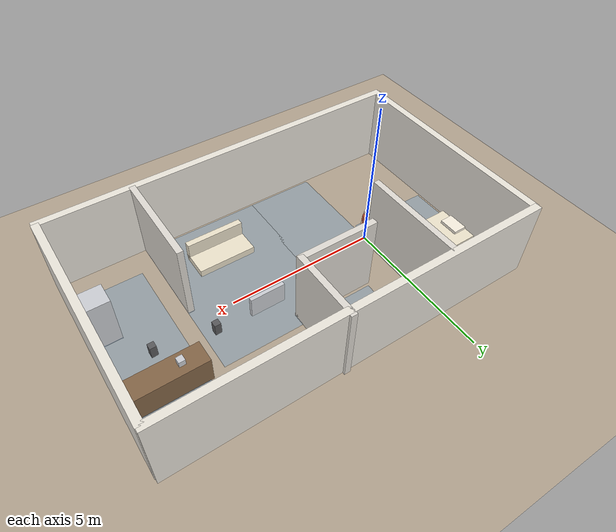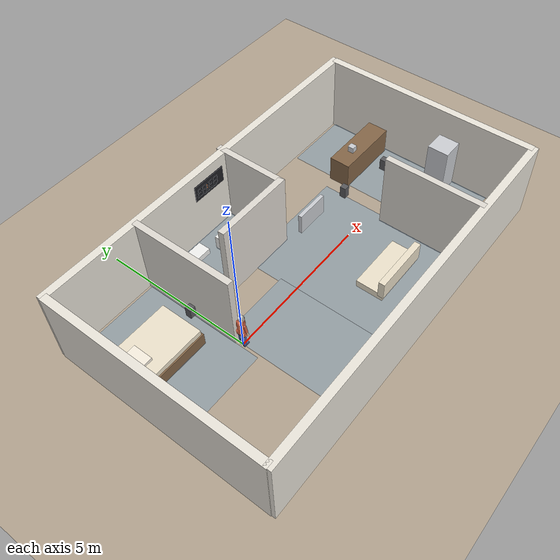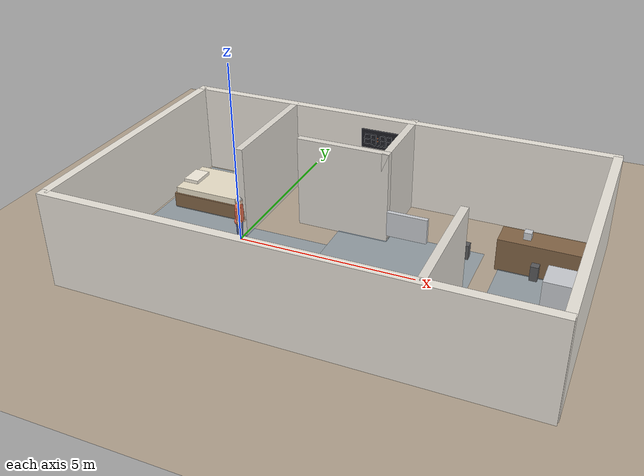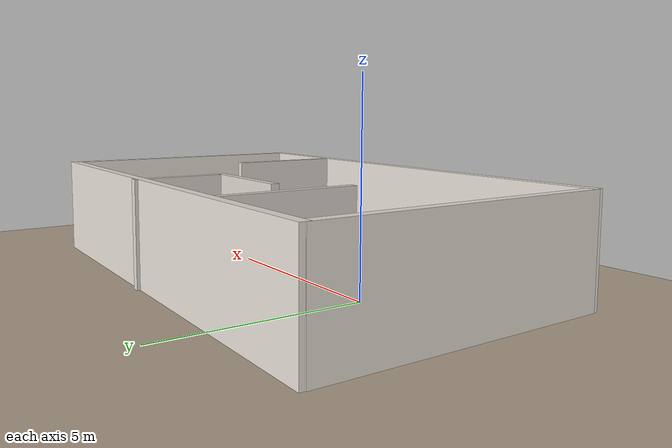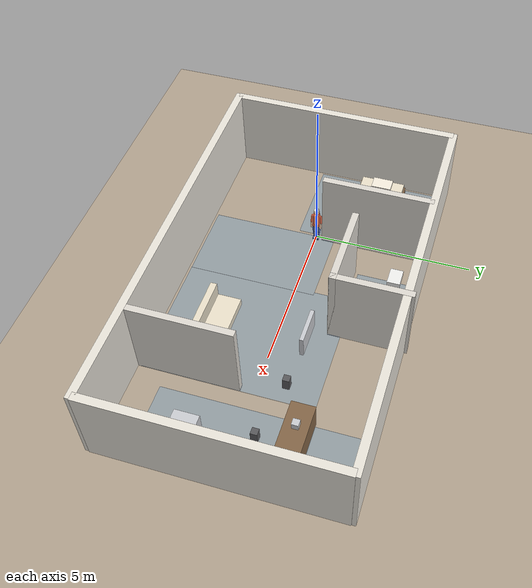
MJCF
<mujoco model="watch">
  <compiler angle="radian" autolimits="true"/>
  <option timestep="0.004" integrator="implicitfast" gravity="0 0 -9.81"/>

  <visual>
    <headlight ambient="0.48 0.47 0.46" diffuse="0.40 0.40 0.39" specular="0.05 0.05 0.05"/>
    <map znear="0.02" zfar="60"/>
    <quality shadowsize="4096"/>
    <global offwidth="1600" offheight="1200"/>
  </visual>

  <asset>
    <texture name="sky" type="skybox" builtin="gradient"
             rgb1="0.55 0.62 0.72" rgb2="0.86 0.88 0.90" width="256" height="256"/>
    <texture name="floor_tex" type="2d" builtin="checker" rgb1="0.72 0.66 0.58"
             rgb2="0.68 0.62 0.54" width="256" height="256"/>
    <material name="floor" texture="floor_tex" texrepeat="10 8" specular="0.05"/>
    <material name="wall" rgba="0.92 0.90 0.86 1" specular="0.04"/>
    <material name="inner_wall" rgba="0.88 0.86 0.83 1" specular="0.04"/>

    <!-- Furniture, muted so the person and the sensors are what the eye goes to. -->
    <material name="bed_mat" rgba="0.93 0.89 0.80 1" specular="0.05"/>
    <material name="wood" rgba="0.52 0.40 0.28 1" specular="0.12"/>
    <material name="appliance" rgba="0.80 0.81 0.83 1" specular="0.45" shininess="0.5"/>
    <material name="porcelain" rgba="0.95 0.95 0.94 1" specular="0.5" shininess="0.6"/>
    <!-- A little warmer than the mattress, so the head end of the bed is legible. -->
    <material name="pillow_mat" rgba="0.97 0.94 0.88 1" specular="0.2"/>

    <!-- The person. One warm colour so they are unmistakable in a grey flat. -->
    <material name="person_body" rgba="0.88 0.42 0.30 1" specular="0.15"/>
    <material name="person_head" rgba="0.90 0.76 0.65 1" specular="0.15"/>
    <material name="person_hair" rgba="0.88 0.88 0.86 1" specular="0.10"/>
    <material name="person_skin" rgba="0.90 0.76 0.65 1" specular="0.15"/>
    <material name="person_legs" rgba="0.31 0.38 0.60 1" specular="0.10"/>

    <material name="pir_idle" rgba="0.35 0.62 0.88 0.30"/>
    <material name="pir_fired" rgba="1.00 0.70 0.10 0.85" emission="0.6"/>
    <material name="lamp_off" rgba="0.35 0.35 0.36 1" specular="0.2"/>

    <material name="clock_case" rgba="0.12 0.12 0.14 1" specular="0.3"/>
    <material name="seg_off" rgba="0.26 0.27 0.30 1"/>
    <material name="seg_on" rgba="1.00 0.45 0.12 1" emission="0.25"/>
    <material name="speed_off" rgba="0.22 0.24 0.26 1"/>
    <material name="speed_on" rgba="0.34 0.88 0.48 1" emission="0.5"/>
    <material name="lamp_on" rgba="1.0 0.93 0.62 1" emission="0.95" specular="0.4"/>
  </asset>

  <worldbody>
    <light name="ceiling" pos="3 1.5 3.4" dir="0 0 -1" directional="true"
           diffuse="0.68 0.67 0.64" specular="0.08 0.08 0.08" castshadow="true"/>
    <light name="fill" pos="-2 -4 3" dir="0.4 0.6 -0.7" directional="true"
           diffuse="0.20 0.20 0.22"/>

    <geom name="floor" type="plane" size="20 20 0.05" material="floor"
          friction="1.0 0.02 0.001" condim="3"/>

    <!-- ===== outer walls ===== -->
    <geom name="wall_n" type="box" pos="3.0 3.6 1.3" size="6.2 0.12 1.3" material="wall"/>
    <geom name="wall_s" type="box" pos="3.0 -3.6 1.3" size="6.2 0.12 1.3" material="wall"/>
    <geom name="wall_w" type="box" pos="-3.1 0 1.3" size="0.12 3.6 1.3" material="wall"/>
    <geom name="wall_e" type="box" pos="9.1 0 1.3" size="0.12 3.6 1.3" material="wall"/>

    <!-- ===== inner walls, leaving doorways ===== -->
    <!-- bedroom / hallway divider, doorway at the south end -->
    <geom name="div_bed" type="box" pos="0.0 1.9 1.3" size="0.10 1.7 1.3" material="inner_wall"/>
    <!-- bathroom, a small room off the hallway -->
    <geom name="bath_n" type="box" pos="2.4 1.5 1.3" size="1.3 0.10 1.3" material="inner_wall"/>
    <geom name="bath_e" type="box" pos="3.6 2.6 1.3" size="0.10 1.2 1.3" material="inner_wall"/>
    <!-- living / kitchen divider, doorway at the north end -->
    <geom name="div_kitchen" type="box" pos="6.2 -2.0 1.3" size="0.10 1.6 1.3" material="inner_wall"/>

    <!-- ===== bedroom (west) ===== -->
    <body name="bed" pos="-1.6 1.6 0">
      <geom name="bed_frame" type="box" pos="0 0 0.22" size="1.0 0.75 0.22" material="wood"/>
      <geom name="bed_mattress" type="box" pos="0 0 0.52" size="0.95 0.70 0.10" material="bed_mat"/>
      <geom name="bed_pillow" type="box" pos="-0.70 0 0.66" size="0.22 0.32 0.06" material="pillow_mat"/>
    </body>
    <geom name="bedside_lamp" type="box" pos="-0.3 1.6 0.55" size="0.10 0.10 0.18"
          material="lamp_off"/>

    <!-- ===== bathroom ===== -->
    <geom name="toilet" type="box" pos="2.4 2.6 0.25" size="0.24 0.32 0.25" material="porcelain"/>
    <geom name="basin" type="box" pos="1.4 2.9 0.45" size="0.28 0.20 0.10" material="porcelain"/>

    <!-- ===== living room ===== -->
    <body name="sofa" pos="4.4 -1.8 0">
      <geom name="sofa_seat" type="box" pos="0 0 0.25" size="0.95 0.45 0.12" material="bed_mat"/>
      <geom name="sofa_back" type="box" pos="0 -0.38 0.55" size="0.95 0.10 0.30" material="bed_mat"/>
    </body>
    <geom name="tv" type="box" pos="4.4 1.0 0.85" size="0.55 0.06 0.35" material="appliance"/>
    <geom name="living_lamp" type="box" pos="6.0 0.9 0.60" size="0.10 0.10 0.20"
          material="lamp_off"/>

    <!-- ===== kitchen (east) ===== -->
    <geom name="counter" type="box" pos="7.8 1.6 0.45" size="1.1 0.35 0.45" material="wood"/>
    <geom name="fridge" type="box" pos="8.6 -1.0 0.85" size="0.35 0.35 0.85" material="appliance"/>
    <geom name="kettle" type="box" pos="7.4 1.6 1.00" size="0.10 0.10 0.10" material="appliance"/>
    <geom name="kitchen_lamp" type="box" pos="7.8 0.6 0.60" size="0.10 0.10 0.20"
          material="lamp_off"/>

    <geom name="pir_bedroom" type="box" pos="-1.5 1.4 0.012" size="1.4 2.0 0.012"
          material="pir_idle" contype="0" conaffinity="0"/>
    <geom name="pir_bathroom" type="box" pos="2.4 2.6 0.012" size="1.2 0.9 0.012"
          material="pir_idle" contype="0" conaffinity="0"/>
    <geom name="pir_living" type="box" pos="4.3 -0.8 0.012" size="2.0 2.6 0.012"
          material="pir_idle" contype="0" conaffinity="0"/>
    <geom name="pir_kitchen" type="box" pos="7.9 0.4 0.012" size="1.1 3.0 0.012"
          material="pir_idle" contype="0" conaffinity="0"/>
    <geom name="pir_hallway" type="box" pos="1.2 -1.4 0.012" size="1.2 2.0 0.012"
          material="pir_idle" contype="0" conaffinity="0"/>

    <body name="clock" pos="2.3 3.46 1.95">
      <geom name="clock_case" type="box" pos="0.42 0.004 0" size="0.588 0.012 0.28"
            material="clock_case" contype="0" conaffinity="0"/>
      <geom name="clock_d0_a" type="box" pos="0.0 -0.014 0.147" size="0.0728 0.006 0.0126" material="seg_off" contype="0" conaffinity="0"/>
      <geom name="clock_d0_b" type="box" pos="0.0784 -0.014 0.0742" size="0.0126 0.006 0.063" material="seg_off" contype="0" conaffinity="0"/>
      <geom name="clock_d0_c" type="box" pos="0.0784 -0.014 -0.0742" size="0.0126 0.006 0.063" material="seg_off" contype="0" conaffinity="0"/>
      <geom name="clock_d0_d" type="box" pos="0.0 -0.014 -0.147" size="0.0728 0.006 0.0126" material="seg_off" contype="0" conaffinity="0"/>
      <geom name="clock_d0_e" type="box" pos="-0.0784 -0.014 -0.0742" size="0.0126 0.006 0.063" material="seg_off" contype="0" conaffinity="0"/>
      <geom name="clock_d0_f" type="box" pos="-0.0784 -0.014 0.0742" size="0.0126 0.006 0.063" material="seg_off" contype="0" conaffinity="0"/>
      <geom name="clock_d0_g" type="box" pos="0.0 -0.014 0.0" size="0.0728 0.006 0.0126" material="seg_off" contype="0" conaffinity="0"/>
      <geom name="clock_d1_a" type="box" pos="0.189 -0.014 0.147" size="0.0728 0.006 0.0126" material="seg_off" contype="0" conaffinity="0"/>
      <geom name="clock_d1_b" type="box" pos="0.2674 -0.014 0.0742" size="0.0126 0.006 0.063" material="seg_off" contype="0" conaffinity="0"/>
      <geom name="clock_d1_c" type="box" pos="0.2674 -0.014 -0.0742" size="0.0126 0.006 0.063" material="seg_off" contype="0" conaffinity="0"/>
      <geom name="clock_d1_d" type="box" pos="0.189 -0.014 -0.147" size="0.0728 0.006 0.0126" material="seg_off" contype="0" conaffinity="0"/>
      <geom name="clock_d1_e" type="box" pos="0.1106 -0.014 -0.0742" size="0.0126 0.006 0.063" material="seg_off" contype="0" conaffinity="0"/>
      <geom name="clock_d1_f" type="box" pos="0.1106 -0.014 0.0742" size="0.0126 0.006 0.063" material="seg_off" contype="0" conaffinity="0"/>
      <geom name="clock_d1_g" type="box" pos="0.189 -0.014 0.0" size="0.0728 0.006 0.0126" material="seg_off" contype="0" conaffinity="0"/>
      <geom name="clock_d2_a" type="box" pos="0.462 -0.014 0.147" size="0.0728 0.006 0.0126" material="seg_off" contype="0" conaffinity="0"/>
      <geom name="clock_d2_b" type="box" pos="0.5404 -0.014 0.0742" size="0.0126 0.006 0.063" material="seg_off" contype="0" conaffinity="0"/>
      <geom name="clock_d2_c" type="box" pos="0.5404 -0.014 -0.0742" size="0.0126 0.006 0.063" material="seg_off" contype="0" conaffinity="0"/>
      <geom name="clock_d2_d" type="box" pos="0.462 -0.014 -0.147" size="0.0728 0.006 0.0126" material="seg_off" contype="0" conaffinity="0"/>
      <geom name="clock_d2_e" type="box" pos="0.3836 -0.014 -0.0742" size="0.0126 0.006 0.063" material="seg_off" contype="0" conaffinity="0"/>
      <geom name="clock_d2_f" type="box" pos="0.3836 -0.014 0.0742" size="0.0126 0.006 0.063" material="seg_off" contype="0" conaffinity="0"/>
      <geom name="clock_d2_g" type="box" pos="0.462 -0.014 0.0" size="0.0728 0.006 0.0126" material="seg_off" contype="0" conaffinity="0"/>
      <geom name="clock_d3_a" type="box" pos="0.651 -0.014 0.147" size="0.0728 0.006 0.0126" material="seg_off" contype="0" conaffinity="0"/>
      <geom name="clock_d3_b" type="box" pos="0.7294 -0.014 0.0742" size="0.0126 0.006 0.063" material="seg_off" contype="0" conaffinity="0"/>
      <geom name="clock_d3_c" type="box" pos="0.7294 -0.014 -0.0742" size="0.0126 0.006 0.063" material="seg_off" contype="0" conaffinity="0"/>
      <geom name="clock_d3_d" type="box" pos="0.651 -0.014 -0.147" size="0.0728 0.006 0.0126" material="seg_off" contype="0" conaffinity="0"/>
      <geom name="clock_d3_e" type="box" pos="0.5726 -0.014 -0.0742" size="0.0126 0.006 0.063" material="seg_off" contype="0" conaffinity="0"/>
      <geom name="clock_d3_f" type="box" pos="0.5726 -0.014 0.0742" size="0.0126 0.006 0.063" material="seg_off" contype="0" conaffinity="0"/>
      <geom name="clock_d3_g" type="box" pos="0.651 -0.014 0.0" size="0.0728 0.006 0.0126" material="seg_off" contype="0" conaffinity="0"/>
      <!-- The colon between hours and minutes. Always lit; a blinking one would be
           read as a fault in a still image. -->
      <geom name="clock_colon_top" type="box" pos="0.3255 -0.014 0.049" size="0.0126 0.006 0.0126" material="seg_on" contype="0" conaffinity="0"/>
      <geom name="clock_colon_bot" type="box" pos="0.3255 -0.014 -0.049" size="0.0126 0.006 0.0126" material="seg_on" contype="0" conaffinity="0"/>

      <geom name="speed_1" type="box" pos="0.224 -0.014 -0.176 " size="0.0336 0.006 0.0168" material="speed_off" contype="0" conaffinity="0"/>
      <geom name="speed_2" type="box" pos="0.329 -0.014 -0.176 " size="0.0336 0.006 0.0168" material="speed_off" contype="0" conaffinity="0"/>
      <geom name="speed_3" type="box" pos="0.434 -0.014 -0.176 " size="0.0336 0.006 0.0168" material="speed_off" contype="0" conaffinity="0"/>
      <geom name="speed_4" type="box" pos="0.539 -0.014 -0.176 " size="0.0336 0.006 0.0168" material="speed_off" contype="0" conaffinity="0"/>
      <geom name="speed_5" type="box" pos="0.644 -0.014 -0.176 " size="0.0336 0.006 0.0168" material="speed_off" contype="0" conaffinity="0"/>
    </body>

    <body name="person" pos="0 0 0.82">
      <joint name="person_x" type="slide" axis="1 0 0" range="-3.0 9.0" damping="40"/>
      <joint name="person_y" type="slide" axis="0 1 0" range="-3.5 3.5" damping="40"/>
      <joint name="person_z" type="slide" axis="0 0 1" range="-0.45 0.9" damping="40"/>
      <inertial pos="0 0 0" mass="55" diaginertia="6 6 2"/>
      <body name="person_body_frame" pos="0 0 0">
        <joint name="person_pitch" type="hinge" axis="0 1 0" range="-1.6 0.2" damping="30"/>

        <!-- Torso, with a slight forward lean at the shoulders. -->
        <geom name="person_torso" type="capsule" fromto="0 0 -0.18 0.02 0 0.20" size="0.115"
              material="person_body" density="200" contype="0" conaffinity="0"/>
        <geom name="person_hips" type="capsule" fromto="0 -0.07 -0.22 0 0.07 -0.22" size="0.10"
              material="person_body" density="200" contype="0" conaffinity="0"/>

        <!-- Head and neck. -->
        <geom name="person_neck" type="capsule" fromto="0.02 0 0.20 0.03 0 0.27" size="0.045"
              material="person_head" density="200" contype="0" conaffinity="0"/>
        <geom name="person_head_g" type="sphere" pos="0.035 0 0.36" size="0.095"
              material="person_head" density="200" contype="0" conaffinity="0"/>
        <!-- Grey hair, which reads as age at a glance and from any angle. -->
        <geom name="person_hair" type="sphere" pos="0.03 0 0.395" size="0.088"
              material="person_hair" density="10" contype="0" conaffinity="0"/>

        <!-- Arms, hanging with a slight bend at the elbow. -->
        <geom name="person_arm_l" type="capsule" fromto="0.01 0.13 0.14 0.03 0.15 -0.10"
              size="0.042" material="person_body" density="150"
              contype="0" conaffinity="0"/>
        <geom name="person_forearm_l" type="capsule" fromto="0.03 0.15 -0.10 0.07 0.14 -0.30"
              size="0.037" material="person_skin" density="150"
              contype="0" conaffinity="0"/>
        <geom name="person_arm_r" type="capsule" fromto="0.01 -0.13 0.14 0.03 -0.15 -0.10"
              size="0.042" material="person_body" density="150"
              contype="0" conaffinity="0"/>
        <geom name="person_forearm_r" type="capsule" fromto="0.03 -0.15 -0.10 0.07 -0.14 -0.30"
              size="0.037" material="person_skin" density="150"
              contype="0" conaffinity="0"/>

        <!-- Legs. -->
        <geom name="person_thigh_l" type="capsule" fromto="0 0.07 -0.26 0 0.07 -0.52"
              size="0.055" material="person_legs" density="180"
              contype="0" conaffinity="0"/>
        <geom name="person_shin_l" type="capsule" fromto="0 0.07 -0.52 0 0.06 -0.76"
              size="0.045" material="person_legs" density="180"
              contype="0" conaffinity="0"/>
        <geom name="person_thigh_r" type="capsule" fromto="0 -0.07 -0.26 0 -0.07 -0.52"
              size="0.055" material="person_legs" density="180"
              contype="0" conaffinity="0"/>
        <geom name="person_shin_r" type="capsule" fromto="0 -0.07 -0.52 0 -0.06 -0.76"
              size="0.045" material="person_legs" density="180"
              contype="0" conaffinity="0"/>
        <geom name="person_foot_l" type="box" pos="0.05 0.06 -0.79" size="0.09 0.04 0.03"
              material="person_legs" density="180" contype="0" conaffinity="0"/>
        <geom name="person_foot_r" type="box" pos="0.05 -0.06 -0.79" size="0.09 0.04 0.03"
              material="person_legs" density="180" contype="0" conaffinity="0"/>
      </body>
    </body>
  </worldbody>

  <actuator>
    <position name="person_x" joint="person_x" kp="4000" ctrlrange="-3.0 9.0" forcerange="-2000 2000"/>
    <position name="person_y" joint="person_y" kp="4000" ctrlrange="-3.5 3.5" forcerange="-2000 2000"/>
    <!-- Height: 0 is standing, -0.45 is lying down or sitting. The bed and chair sensors
         read this, which is how "in bed" is told from "standing beside the bed". -->
    <position name="person_z" joint="person_z" kp="40000" ctrlrange="-0.45 0.9"
              forcerange="-4000 4000"/>
    <position name="person_pitch" joint="person_pitch" kp="600" ctrlrange="-1.6 0.2"
              forcerange="-600 600"/>
  </actuator>

  <keyframe>
    <!-- qpos = person only (3): x, y, z. Asleep in bed at the start of the day. -->
    <key name="asleep" qpos="-1.6 1.6 -0.20 -1.5"/>
    <key name="up" qpos="-1.6 0.4 0 0"/>
  </keyframe>
</mujoco>
